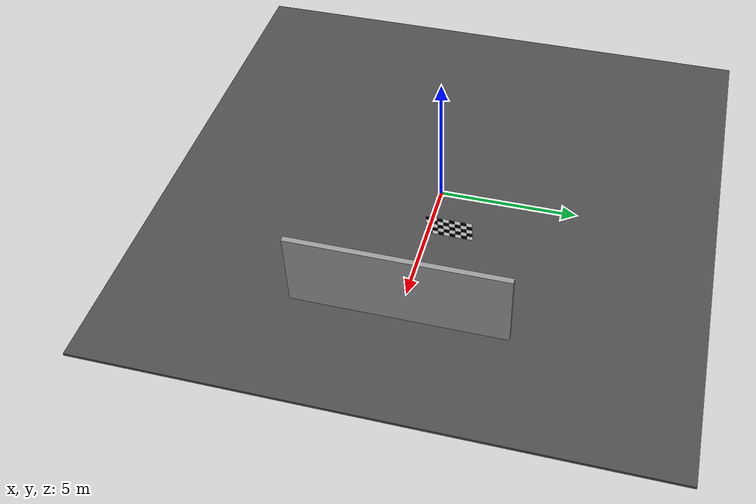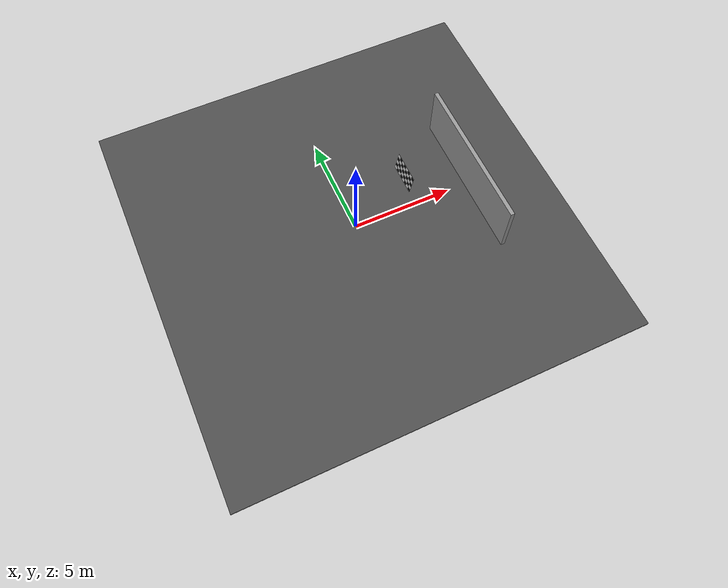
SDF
<sdf version="1.6">
 <world name="default">
  <light name="sun" type="directional">
   <pose>0 0 10 0 -0 0</pose>
   <diffuse>0.8 0.8 0.8 1</diffuse>
   <specular>0.1 0.1 0.1 1</specular>
   <attenuation>
    <range>1000</range>
    <constant>0.9</constant>
    <linear>0.01</linear>
    <quadratic>0.001</quadratic>
   </attenuation>
   <direction>-0.5 0.5 -1</direction>
  </light>
  <gravity>0 0 -9.8</gravity>
  <magnetic_field>6e-06 2.3e-05 -4.2e-05</magnetic_field>
  <atmosphere type="adiabatic"/>
  <physics name="default_physics" default="0" type="ode">
   <max_step_size>0.001</max_step_size>
   <real_time_factor>1</real_time_factor>
   <real_time_update_rate>1000</real_time_update_rate>
  </physics>
  <scene><ambient>0.4 0.4 0.4 1</ambient><background>0.7 0.7 0.7 1</background><shadows>1</shadows></scene>
  <spherical_coordinates>
   <surface_model>EARTH_WGS84</surface_model>
   <latitude_deg>0</latitude_deg>
   <longitude_deg>0</longitude_deg>
   <elevation>0</elevation>
   <heading_deg>0</heading_deg>
  </spherical_coordinates>
  <model name="asphalt_plane">
   <static>1</static>
   <link name="link">
    <collision name="collision"><geometry><box><size>20 20 0.1</size></box></geometry></collision>
    <visual name="visual">
     <cast_shadows>0</cast_shadows>
     <geometry><box><size>20 20 0.1</size></box></geometry>
     <material>
      <script>
       <uri>model://asphalt_plane/materials/scripts</uri>
       <uri>model://asphalt_plane/materials/textures</uri>
       <name>vrc/asphalt</name>
      </script>
     </material>
    </visual>
   </link>
   <pose>0 0 -0.05 0 -0 0</pose>
  </model>
  <model name="grey_wall">
   <static>1</static>
   <link name="link">
    <pose>0 0 1.4 0 -0 0</pose>
    <collision name="collision"><geometry><box><size>7.5 0.2 2.8</size></box></geometry></collision>
    <visual name="visual">
     <cast_shadows>0</cast_shadows>
     <geometry><box><size>7.5 0.2 2.8</size></box></geometry>
     <material>
      <script>
       <uri>model://grey_wall/materials/scripts</uri>
       <uri>model://grey_wall/materials/textures</uri>
       <name>vrc/grey_wall</name>
      </script>
     </material>
    </visual>
   </link>
   <pose>6 0 0 0 -0 1.57</pose>
  </model>
  <model name="sensors">
   <link name="base_footprint">
    <inertial>
     <pose>0 0 1.998 0 -0 0</pose>
     <mass>0.1001</mass>
     <inertia>
      <ixx>0.0005006</ixx>
      <ixy>0</ixy>
      <ixz>0</ixz>
      <iyy>0.0005006</iyy>
      <iyz>0</iyz>
      <izz>0.000101</izz>
     </inertia>
    </inertial>
    <collision name="base_footprint_fixed_joint_lump__collision_collision">
     <pose>0 0 2 0 -0 0</pose>
     <geometry><mesh><scale>1 1 1</scale><uri>model://blackflys/meshes/blackflys.stl</uri></mesh></geometry>
    </collision>
    <visual name="base_footprint_visual">
     <geometry><box><size>0.001 0.001 0.001</size></box></geometry>
     <material><script><uri>__default__</uri><name>__default__</name></script></material>
    </visual>
    <visual name="base_footprint_fixed_joint_lump__visual_visual_1">
     <pose>0 0 2 0 -0 0</pose>
     <geometry><mesh><scale>1 1 1</scale><uri>model://blackflys/meshes/blackflys.dae</uri></mesh></geometry>
    </visual>
    <sensor name="zoe_narrow_link_camera" type="camera">
     <camera name="__default__">
      <horizontal_fov>1.57</horizontal_fov>
      <image><width>2048</width><height>1536</height><format>R8G8B8</format></image>
      <clip><near>0.03</near><far>150</far></clip>
      <noise><type>gaussian</type><mean>0</mean><stddev>0.007</stddev></noise>
     </camera>
     <always_on>1</always_on>
     <update_rate>1</update_rate>
     <visualize>0</visualize>
     <plugin name="camera_controller" filename="libgazebo_ros_camera.so">
      <alwaysOn>true</alwaysOn>
      <updateRate>1</updateRate>
      <cameraName>blackflys</cameraName>
      <imageTopicName>image_raw</imageTopicName>
      <cameraInfoTopicName>camera_info</cameraInfoTopicName>
      <frameName>blackflys</frameName>
      <hackBaseline>0.07</hackBaseline>
      <distortionK1>0.0</distortionK1>
      <distortionK2>0.0</distortionK2>
      <distortionK3>0.0</distortionK3>
      <distortionT1>0.0</distortionT1>
      <distortionT2>0.0</distortionT2>
      <robotNamespace>/</robotNamespace>
     </plugin>
     <pose>0 0 2 0 -0 0</pose>
    </sensor>
   </link>
   <static>1</static>
  </model>
  <model name="checkerboard_5_8_0_2">
   <static>1</static>
   <link name="checkerboard_5_8_0_2_body">
    <visual name="checker_0_0">
     <pose>-0.4 -0.7 0 0 -0 0</pose>
     <geometry><box><size>0.2 0.2 0.0002</size></box></geometry>
     <material>
      <ambient>0 0 0 1</ambient>
      <diffuse>0 0 0 1</diffuse>
      <specular>0 0 0 1</specular>
      <emissive>0 0 0 1</emissive>
     </material>
    </visual>
    <visual name="checker_0_1">
     <pose>-0.4 -0.5 0 0 -0 0</pose>
     <geometry><box><size>0.2 0.2 0.0002</size></box></geometry>
     <material>
      <ambient>1 1 1 1</ambient>
      <diffuse>1 1 1 1</diffuse>
      <specular>1 1 1 1</specular>
      <emissive>1 1 1 1</emissive>
     </material>
    </visual>
    <visual name="checker_0_2">
     <pose>-0.4 -0.3 0 0 -0 0</pose>
     <geometry><box><size>0.2 0.2 0.0002</size></box></geometry>
     <material>
      <ambient>0 0 0 1</ambient>
      <diffuse>0 0 0 1</diffuse>
      <specular>0 0 0 1</specular>
      <emissive>0 0 0 1</emissive>
     </material>
    </visual>
    <visual name="checker_0_3">
     <pose>-0.4 -0.1 0 0 -0 0</pose>
     <geometry><box><size>0.2 0.2 0.0002</size></box></geometry>
     <material>
      <ambient>1 1 1 1</ambient>
      <diffuse>1 1 1 1</diffuse>
      <specular>1 1 1 1</specular>
      <emissive>1 1 1 1</emissive>
     </material>
    </visual>
    <visual name="checker_0_4">
     <pose>-0.4 0.1 0 0 -0 0</pose>
     <geometry><box><size>0.2 0.2 0.0002</size></box></geometry>
     <material>
      <ambient>0 0 0 1</ambient>
      <diffuse>0 0 0 1</diffuse>
      <specular>0 0 0 1</specular>
      <emissive>0 0 0 1</emissive>
     </material>
    </visual>
    <visual name="checker_0_5">
     <pose>-0.4 0.3 0 0 -0 0</pose>
     <geometry><box><size>0.2 0.2 0.0002</size></box></geometry>
     <material>
      <ambient>1 1 1 1</ambient>
      <diffuse>1 1 1 1</diffuse>
      <specular>1 1 1 1</specular>
      <emissive>1 1 1 1</emissive>
     </material>
    </visual>
    <visual name="checker_0_6">
     <pose>-0.4 0.5 0 0 -0 0</pose>
     <geometry><box><size>0.2 0.2 0.0002</size></box></geometry>
     <material>
      <ambient>0 0 0 1</ambient>
      <diffuse>0 0 0 1</diffuse>
      <specular>0 0 0 1</specular>
      <emissive>0 0 0 1</emissive>
     </material>
    </visual>
    <visual name="checker_0_7">
     <pose>-0.4 0.7 0 0 -0 0</pose>
     <geometry><box><size>0.2 0.2 0.0002</size></box></geometry>
     <material>
      <ambient>1 1 1 1</ambient>
      <diffuse>1 1 1 1</diffuse>
      <specular>1 1 1 1</specular>
      <emissive>1 1 1 1</emissive>
     </material>
    </visual>
    <visual name="checker_1_0">
     <pose>-0.2 -0.7 0 0 -0 0</pose>
     <geometry><box><size>0.2 0.2 0.0002</size></box></geometry>
     <material>
      <ambient>1 1 1 1</ambient>
      <diffuse>1 1 1 1</diffuse>
      <specular>1 1 1 1</specular>
      <emissive>1 1 1 1</emissive>
     </material>
    </visual>
    <visual name="checker_1_1">
     <pose>-0.2 -0.5 0 0 -0 0</pose>
     <geometry><box><size>0.2 0.2 0.0002</size></box></geometry>
     <material>
      <ambient>0 0 0 1</ambient>
      <diffuse>0 0 0 1</diffuse>
      <specular>0 0 0 1</specular>
      <emissive>0 0 0 1</emissive>
     </material>
    </visual>
    <visual name="checker_1_2">
     <pose>-0.2 -0.3 0 0 -0 0</pose>
     <geometry><box><size>0.2 0.2 0.0002</size></box></geometry>
     <material>
      <ambient>1 1 1 1</ambient>
      <diffuse>1 1 1 1</diffuse>
      <specular>1 1 1 1</specular>
      <emissive>1 1 1 1</emissive>
     </material>
    </visual>
    <visual name="checker_1_3">
     <pose>-0.2 -0.1 0 0 -0 0</pose>
     <geometry><box><size>0.2 0.2 0.0002</size></box></geometry>
     <material>
      <ambient>0 0 0 1</ambient>
      <diffuse>0 0 0 1</diffuse>
      <specular>0 0 0 1</specular>
      <emissive>0 0 0 1</emissive>
     </material>
    </visual>
    <visual name="checker_1_4">
     <pose>-0.2 0.1 0 0 -0 0</pose>
     <geometry><box><size>0.2 0.2 0.0002</size></box></geometry>
     <material>
      <ambient>1 1 1 1</ambient>
      <diffuse>1 1 1 1</diffuse>
      <specular>1 1 1 1</specular>
      <emissive>1 1 1 1</emissive>
     </material>
    </visual>
    <visual name="checker_1_5">
     <pose>-0.2 0.3 0 0 -0 0</pose>
     <geometry><box><size>0.2 0.2 0.0002</size></box></geometry>
     <material>
      <ambient>0 0 0 1</ambient>
      <diffuse>0 0 0 1</diffuse>
      <specular>0 0 0 1</specular>
      <emissive>0 0 0 1</emissive>
     </material>
    </visual>
    <visual name="checker_1_6">
     <pose>-0.2 0.5 0 0 -0 0</pose>
     <geometry><box><size>0.2 0.2 0.0002</size></box></geometry>
     <material>
      <ambient>1 1 1 1</ambient>
      <diffuse>1 1 1 1</diffuse>
      <specular>1 1 1 1</specular>
      <emissive>1 1 1 1</emissive>
     </material>
    </visual>
    <visual name="checker_1_7">
     <pose>-0.2 0.7 0 0 -0 0</pose>
     <geometry><box><size>0.2 0.2 0.0002</size></box></geometry>
     <material>
      <ambient>0 0 0 1</ambient>
      <diffuse>0 0 0 1</diffuse>
      <specular>0 0 0 1</specular>
      <emissive>0 0 0 1</emissive>
     </material>
    </visual>
    <visual name="checker_2_0">
     <pose>0 -0.7 0 0 -0 0</pose>
     <geometry><box><size>0.2 0.2 0.0002</size></box></geometry>
     <material>
      <ambient>0 0 0 1</ambient>
      <diffuse>0 0 0 1</diffuse>
      <specular>0 0 0 1</specular>
      <emissive>0 0 0 1</emissive>
     </material>
    </visual>
    <visual name="checker_2_1">
     <pose>0 -0.5 0 0 -0 0</pose>
     <geometry><box><size>0.2 0.2 0.0002</size></box></geometry>
     <material>
      <ambient>1 1 1 1</ambient>
      <diffuse>1 1 1 1</diffuse>
      <specular>1 1 1 1</specular>
      <emissive>1 1 1 1</emissive>
     </material>
    </visual>
    <visual name="checker_2_2">
     <pose>0 -0.3 0 0 -0 0</pose>
     <geometry><box><size>0.2 0.2 0.0002</size></box></geometry>
     <material>
      <ambient>0 0 0 1</ambient>
      <diffuse>0 0 0 1</diffuse>
      <specular>0 0 0 1</specular>
      <emissive>0 0 0 1</emissive>
     </material>
    </visual>
    <visual name="checker_2_3">
     <pose>0 -0.1 0 0 -0 0</pose>
     <geometry><box><size>0.2 0.2 0.0002</size></box></geometry>
     <material>
      <ambient>1 1 1 1</ambient>
      <diffuse>1 1 1 1</diffuse>
      <specular>1 1 1 1</specular>
      <emissive>1 1 1 1</emissive>
     </material>
    </visual>
    <visual name="checker_2_4">
     <pose>0 0.1 0 0 -0 0</pose>
     <geometry><box><size>0.2 0.2 0.0002</size></box></geometry>
     <material>
      <ambient>0 0 0 1</ambient>
      <diffuse>0 0 0 1</diffuse>
      <specular>0 0 0 1</specular>
      <emissive>0 0 0 1</emissive>
     </material>
    </visual>
    <visual name="checker_2_5">
     <pose>0 0.3 0 0 -0 0</pose>
     <geometry><box><size>0.2 0.2 0.0002</size></box></geometry>
     <material>
      <ambient>1 1 1 1</ambient>
      <diffuse>1 1 1 1</diffuse>
      <specular>1 1 1 1</specular>
      <emissive>1 1 1 1</emissive>
     </material>
    </visual>
    <visual name="checker_2_6">
     <pose>0 0.5 0 0 -0 0</pose>
     <geometry><box><size>0.2 0.2 0.0002</size></box></geometry>
     <material>
      <ambient>0 0 0 1</ambient>
      <diffuse>0 0 0 1</diffuse>
      <specular>0 0 0 1</specular>
      <emissive>0 0 0 1</emissive>
     </material>
    </visual>
    <visual name="checker_2_7">
     <pose>0 0.7 0 0 -0 0</pose>
     <geometry><box><size>0.2 0.2 0.0002</size></box></geometry>
     <material>
      <ambient>1 1 1 1</ambient>
      <diffuse>1 1 1 1</diffuse>
      <specular>1 1 1 1</specular>
      <emissive>1 1 1 1</emissive>
     </material>
    </visual>
    <visual name="checker_3_0">
     <pose>0.2 -0.7 0 0 -0 0</pose>
     <geometry><box><size>0.2 0.2 0.0002</size></box></geometry>
     <material>
      <ambient>1 1 1 1</ambient>
      <diffuse>1 1 1 1</diffuse>
      <specular>1 1 1 1</specular>
      <emissive>1 1 1 1</emissive>
     </material>
    </visual>
    <visual name="checker_3_1">
     <pose>0.2 -0.5 0 0 -0 0</pose>
     <geometry><box><size>0.2 0.2 0.0002</size></box></geometry>
     <material>
      <ambient>0 0 0 1</ambient>
      <diffuse>0 0 0 1</diffuse>
      <specular>0 0 0 1</specular>
      <emissive>0 0 0 1</emissive>
     </material>
    </visual>
    <visual name="checker_3_2">
     <pose>0.2 -0.3 0 0 -0 0</pose>
     <geometry><box><size>0.2 0.2 0.0002</size></box></geometry>
     <material>
      <ambient>1 1 1 1</ambient>
      <diffuse>1 1 1 1</diffuse>
      <specular>1 1 1 1</specular>
      <emissive>1 1 1 1</emissive>
     </material>
    </visual>
    <visual name="checker_3_3">
     <pose>0.2 -0.1 0 0 -0 0</pose>
     <geometry><box><size>0.2 0.2 0.0002</size></box></geometry>
     <material>
      <ambient>0 0 0 1</ambient>
      <diffuse>0 0 0 1</diffuse>
      <specular>0 0 0 1</specular>
      <emissive>0 0 0 1</emissive>
     </material>
    </visual>
    <visual name="checker_3_4">
     <pose>0.2 0.1 0 0 -0 0</pose>
     <geometry><box><size>0.2 0.2 0.0002</size></box></geometry>
     <material>
      <ambient>1 1 1 1</ambient>
      <diffuse>1 1 1 1</diffuse>
      <specular>1 1 1 1</specular>
      <emissive>1 1 1 1</emissive>
     </material>
    </visual>
    <visual name="checker_3_5">
     <pose>0.2 0.3 0 0 -0 0</pose>
     <geometry><box><size>0.2 0.2 0.0002</size></box></geometry>
     <material>
      <ambient>0 0 0 1</ambient>
      <diffuse>0 0 0 1</diffuse>
      <specular>0 0 0 1</specular>
      <emissive>0 0 0 1</emissive>
     </material>
    </visual>
    <visual name="checker_3_6">
     <pose>0.2 0.5 0 0 -0 0</pose>
     <geometry><box><size>0.2 0.2 0.0002</size></box></geometry>
     <material>
      <ambient>1 1 1 1</ambient>
      <diffuse>1 1 1 1</diffuse>
      <specular>1 1 1 1</specular>
      <emissive>1 1 1 1</emissive>
     </material>
    </visual>
    <visual name="checker_3_7">
     <pose>0.2 0.7 0 0 -0 0</pose>
     <geometry><box><size>0.2 0.2 0.0002</size></box></geometry>
     <material>
      <ambient>0 0 0 1</ambient>
      <diffuse>0 0 0 1</diffuse>
      <specular>0 0 0 1</specular>
      <emissive>0 0 0 1</emissive>
     </material>
    </visual>
    <visual name="checker_4_0">
     <pose>0.4 -0.7 0 0 -0 0</pose>
     <geometry><box><size>0.2 0.2 0.0002</size></box></geometry>
     <material>
      <ambient>0 0 0 1</ambient>
      <diffuse>0 0 0 1</diffuse>
      <specular>0 0 0 1</specular>
      <emissive>0 0 0 1</emissive>
     </material>
    </visual>
    <visual name="checker_4_1">
     <pose>0.4 -0.5 0 0 -0 0</pose>
     <geometry><box><size>0.2 0.2 0.0002</size></box></geometry>
     <material>
      <ambient>1 1 1 1</ambient>
      <diffuse>1 1 1 1</diffuse>
      <specular>1 1 1 1</specular>
      <emissive>1 1 1 1</emissive>
     </material>
    </visual>
    <visual name="checker_4_2">
     <pose>0.4 -0.3 0 0 -0 0</pose>
     <geometry><box><size>0.2 0.2 0.0002</size></box></geometry>
     <material>
      <ambient>0 0 0 1</ambient>
      <diffuse>0 0 0 1</diffuse>
      <specular>0 0 0 1</specular>
      <emissive>0 0 0 1</emissive>
     </material>
    </visual>
    <visual name="checker_4_3">
     <pose>0.4 -0.1 0 0 -0 0</pose>
     <geometry><box><size>0.2 0.2 0.0002</size></box></geometry>
     <material>
      <ambient>1 1 1 1</ambient>
      <diffuse>1 1 1 1</diffuse>
      <specular>1 1 1 1</specular>
      <emissive>1 1 1 1</emissive>
     </material>
    </visual>
    <visual name="checker_4_4">
     <pose>0.4 0.1 0 0 -0 0</pose>
     <geometry><box><size>0.2 0.2 0.0002</size></box></geometry>
     <material>
      <ambient>0 0 0 1</ambient>
      <diffuse>0 0 0 1</diffuse>
      <specular>0 0 0 1</specular>
      <emissive>0 0 0 1</emissive>
     </material>
    </visual>
    <visual name="checker_4_5">
     <pose>0.4 0.3 0 0 -0 0</pose>
     <geometry><box><size>0.2 0.2 0.0002</size></box></geometry>
     <material>
      <ambient>1 1 1 1</ambient>
      <diffuse>1 1 1 1</diffuse>
      <specular>1 1 1 1</specular>
      <emissive>1 1 1 1</emissive>
     </material>
    </visual>
    <visual name="checker_4_6">
     <pose>0.4 0.5 0 0 -0 0</pose>
     <geometry><box><size>0.2 0.2 0.0002</size></box></geometry>
     <material>
      <ambient>0 0 0 1</ambient>
      <diffuse>0 0 0 1</diffuse>
      <specular>0 0 0 1</specular>
      <emissive>0 0 0 1</emissive>
     </material>
    </visual>
    <visual name="checker_4_7">
     <pose>0.4 0.7 0 0 -0 0</pose>
     <geometry><box><size>0.2 0.2 0.0002</size></box></geometry>
     <material>
      <ambient>1 1 1 1</ambient>
      <diffuse>1 1 1 1</diffuse>
      <specular>1 1 1 1</specular>
      <emissive>1 1 1 1</emissive>
     </material>
    </visual>
    <collision name="collision"><geometry><box><size>1 1.6 0.0001</size></box></geometry></collision>
   </link>
   <pose>3 1 1.4 -3.14159 1.39159 -3.14159</pose>
  </model>
 </world>
</sdf>
